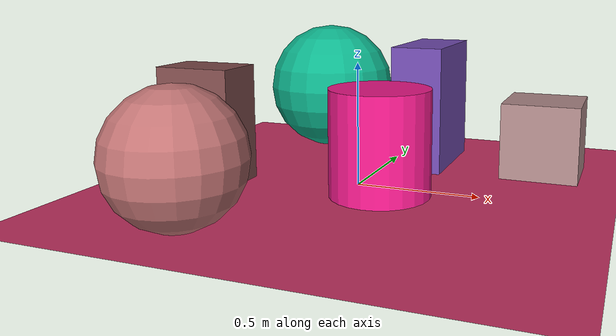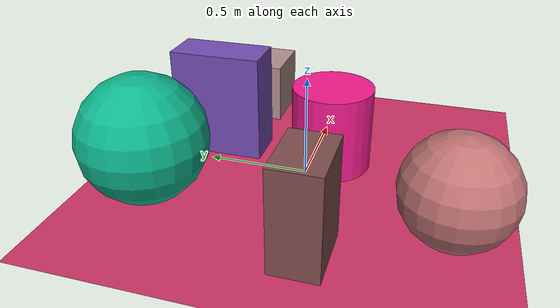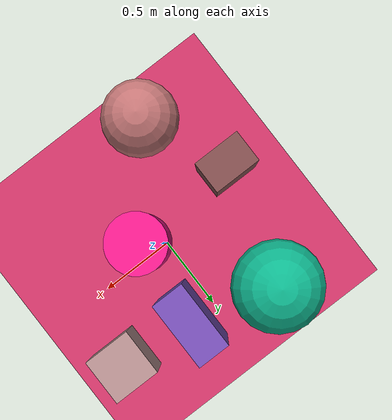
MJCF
<mujoco>
   <asset>
<texture type="skybox" builtin="gradient" rgb1="0.0 0.3 0.8" rgb2="0.0 1.0 0.5" width="256" height="256"/>
<texture name="gradient_0" builtin="gradient" rgb1="1.0 0.0 0.7" rgb2="0.9 0.2 0.4" width="200" height="200"/>
<texture name="checker_1" builtin="checker" type="2d" rgb1="0.8 0.1 0.8" rgb2="0.1 0.5 0.6" width="200" height="200"/>
<texture name="checker_2" builtin="checker" type="2d" rgb1="0.0 0.6 1.0" rgb2="0.1 0.8 0.1" width="200" height="200"/>
<texture name="checker_3" builtin="checker" type="2d" rgb1="0.5 0.8 0.8" rgb2="1.0 0.1 0.1" width="200" height="200"/>
<texture name="flat_4" builtin="flat" rgb1="0.5 0.3 0.3" rgb2="0.5 0.3 0.3"  width="200" height="200"/>
<texture name="checker_5" builtin="checker" type="2d" rgb1="0.6 0.3 0.7" rgb2="0.8 0.8 0.4" width="200" height="200"/><material name="gradient_0_mat" reflectance="0" texture="gradient_0" texuniform="true"/>
<material name="checker_1_mat" reflectance="0" texrepeat="9 9" texture="checker_1" texuniform="false" />
<material name="checker_2_mat" reflectance="0" texrepeat="6 6" texture="checker_2" texuniform="false" />
<material name="checker_3_mat" reflectance="0" texrepeat="5 5" texture="checker_3" texuniform="false" />
<material name="flat_4_mat" reflectance="0" texture="flat_4" texuniform="true"/>
<material name="checker_5_mat" reflectance="0" texrepeat="5 5" texture="checker_5" texuniform="false" />
   </asset>

   <worldbody>
      <light diffuse=".9 .9 .9" pos="0 0 3" dir="0 0 -1"/>
     <geom type="plane" size="1 1 0.1" rgba="0.8 0.2 0.4 1"/>
<geom type="cylinder" pos="0.13 -0.1 0.21" size="0.2 0.21 0.21" material="gradient_0_mat" />
<geom type="box" pos="0.16 0.49 0.27" size="0.11 0.23 0.27" material="checker_1_mat" />
<geom type="sphere" pos="-0.4 0.65 0.3" size="0.3 0.3 0.3" material="checker_2_mat" />
<geom type="sphere" pos="-0.36 -0.72 0.25" size="0.25 0.25 0.25" material="checker_3_mat" />
<geom type="box" pos="-0.61 -0.15 0.24" size="0.16 0.11 0.24" material="flat_4_mat" />
<geom type="box" pos="0.68 0.45 0.16" size="0.16 0.16 0.16" material="checker_5_mat" /><camera euler="60 0 180" fovy="60" name="camera_a" pos="0 -1.5 1"></camera>   </worldbody>
</mujoco>
